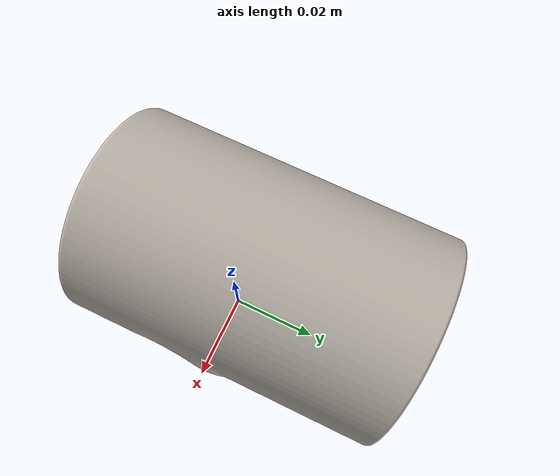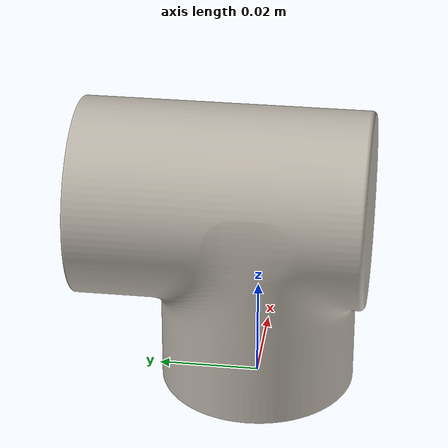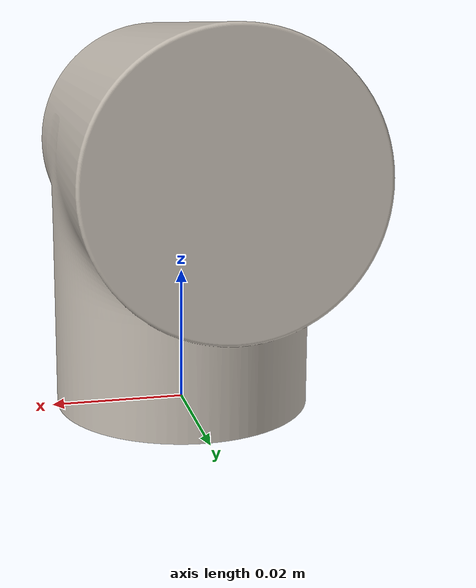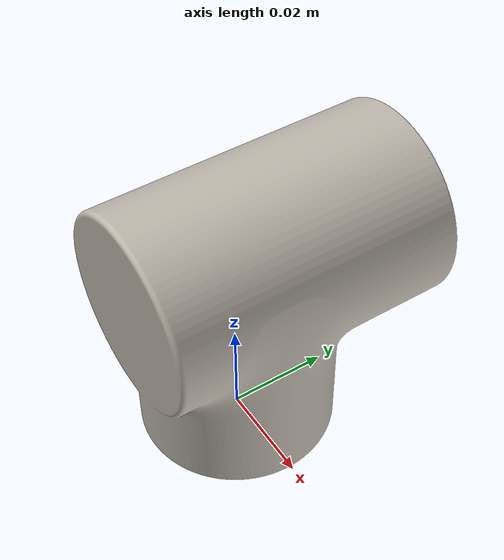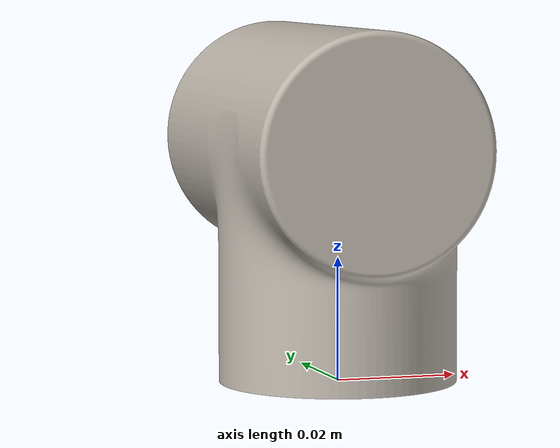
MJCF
<mujoco model="link6">
  <default>
    <default class="visual">
      <geom group="2" type="mesh" contype="0" conaffinity="0"/>
    </default>
    <default class="collision">
      <geom group="3" type="mesh"/>
    </default>
  </default>
  <asset>
    <texture type="2d" name="link6" file="link6.png"/>
    <material name="material0.005" texture="link6" specular="0.0" shininess="0.25"/>
    <mesh file="link6.obj"/>
  </asset>
  <worldbody>
    <body name="link6">
      <geom material="material0.005" mesh="link6" class="visual"/>
      <geom mesh="link6" class="collision"/>
    </body>
  </worldbody>
</mujoco>
